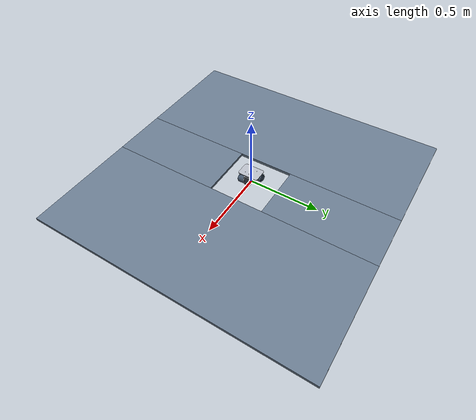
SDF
<?xml version='1.0' encoding='utf-8'?>
<sdf version="1.7">
  <world name="hole">
    <gravity>0 0 -9.81</gravity>
    <physics name="dart" type="ignored">
      <max_step_size>0.001</max_step_size>
      <real_time_factor>1</real_time_factor>
    </physics>
    <plugin filename="ignition-gazebo-physics-system" name="ignition::gazebo::systems::Physics">
      <engine>ignition-physics-dartsim-plugin</engine>
    </plugin>
    <plugin filename="ignition-gazebo-contact-system" name="ignition::gazebo::systems::Contact" />
    <plugin filename="ignition-gazebo-user-commands-system" name="ignition::gazebo::systems::UserCommands" />
    <plugin filename="ignition-gazebo-scene-broadcaster-system" name="ignition::gazebo::systems::SceneBroadcaster" />
    <scene>
      <ambient>0.65 0.65 0.65 1</ambient>
      <background>0.15 0.18 0.22 1</background>
    </scene>
    <light name="sun" type="directional">
      <pose>0 0 10 0 0 0</pose>
      <diffuse>0.9 0.9 0.9 1</diffuse>
      <direction>-0.5 -0.4 -1</direction>
    </light>
    <gui fullscreen="false">
      <plugin filename="MinimalScene" name="3D View">
        <ignition-gui>
          <title>3D View</title>
          <property type="bool" key="showTitleBar">false</property>
          <property type="string" key="state">docked</property>
        </ignition-gui>
        <engine>ogre2</engine>
        <scene>scene</scene>
        <ambient_light>0.65 0.65 0.65</ambient_light>
        <background_color>0.15 0.18 0.22</background_color>
        <camera_pose>0.25 -0.3 0.23 0 0.43 2.2655346</camera_pose>
        <camera_clip>
          <near>0.005</near>
          <far>100</far>
        </camera_clip>
      </plugin>
      <plugin filename="GzSceneManager" name="Scene Manager">
        <ignition-gui>
          <property type="bool" key="showTitleBar">false</property>
          <property type="string" key="state">floating</property>
          <property type="bool" key="resizable">false</property>
          <property type="double" key="width">5</property>
          <property type="double" key="height">5</property>
        </ignition-gui>
      </plugin>
      <plugin filename="InteractiveViewControl" name="View Control">
        <ignition-gui>
          <property type="bool" key="showTitleBar">false</property>
          <property type="string" key="state">floating</property>
          <property type="bool" key="resizable">false</property>
          <property type="double" key="width">5</property>
          <property type="double" key="height">5</property>
        </ignition-gui>
      </plugin>
      <plugin filename="CameraTracking" name="Camera Tracking">
        <ignition-gui>
          <property type="bool" key="showTitleBar">false</property>
          <property type="string" key="state">floating</property>
          <property type="bool" key="resizable">false</property>
          <property type="double" key="width">5</property>
          <property type="double" key="height">5</property>
        </ignition-gui>
      </plugin>
      <plugin filename="EntityContextMenuPlugin" name="Context Menu">
        <ignition-gui>
          <property type="bool" key="showTitleBar">false</property>
          <property type="string" key="state">floating</property>
          <property type="bool" key="resizable">false</property>
          <property type="double" key="width">5</property>
          <property type="double" key="height">5</property>
        </ignition-gui>
      </plugin>
      <plugin filename="WorldControl" name="World Control">
        <ignition-gui>
          <property type="bool" key="showTitleBar">false</property>
          <property type="string" key="state">floating</property>
          <property type="bool" key="resizable">false</property>
          <property type="double" key="width">120</property>
          <property type="double" key="height">70</property>
          <property type="double" key="z">1</property>
          <anchors target="3D View">
            <line own="left" target="left" />
            <line own="bottom" target="bottom" />
          </anchors>
        </ignition-gui>
        <play_pause>true</play_pause>
        <step>true</step>
        <start_paused>false</start_paused>
        <use_event>true</use_event>
      </plugin>
      <plugin filename="WorldStats" name="World Stats">
        <ignition-gui>
          <property type="bool" key="showTitleBar">false</property>
          <property type="string" key="state">floating</property>
          <property type="bool" key="resizable">false</property>
          <property type="double" key="width">260</property>
          <property type="double" key="height">110</property>
          <property type="double" key="z">1</property>
          <anchors target="3D View">
            <line own="right" target="right" />
            <line own="bottom" target="bottom" />
          </anchors>
        </ignition-gui>
        <sim_time>true</sim_time>
        <real_time>true</real_time>
        <real_time_factor>true</real_time_factor>
        <iterations>true</iterations>
      </plugin>
      <plugin filename="EntityTree" name="Entity Tree">
        <ignition-gui>
          <property type="bool" key="showTitleBar">false</property>
        </ignition-gui>
      </plugin>
    </gui>
    <model name="steel_plate">
      <static>true</static>
      <pose>0 0 0 0 0 0</pose>
      <link name="plate">
        <visual name="visual_0">
          <pose>-0.6 0 -0.01 0 0 0</pose>
          <geometry>
            <box>
              <size>0.8 2 0.02</size>
            </box>
          </geometry>
          <material>
            <ambient>0.4 0.47 0.55 1</ambient>
            <diffuse>0.4 0.47 0.55 1</diffuse>
            <specular>0.15 0.15 0.15 1</specular>
          </material>
        </visual>
        <collision name="collision_0">
          <pose>-0.6 0 -0.01 0 0 0</pose>
          <geometry>
            <box>
              <size>0.8 2 0.02</size>
            </box>
          </geometry>
          <surface>
            <friction>
              <ode>
                <mu>0.8</mu>
                <mu2>0.8</mu2>
              </ode>
            </friction>
          </surface>
        </collision>
        <visual name="visual_1">
          <pose>0.6 0 -0.01 0 0 0</pose>
          <geometry>
            <box>
              <size>0.8 2 0.02</size>
            </box>
          </geometry>
          <material>
            <ambient>0.4 0.47 0.55 1</ambient>
            <diffuse>0.4 0.47 0.55 1</diffuse>
            <specular>0.15 0.15 0.15 1</specular>
          </material>
        </visual>
        <collision name="collision_1">
          <pose>0.6 0 -0.01 0 0 0</pose>
          <geometry>
            <box>
              <size>0.8 2 0.02</size>
            </box>
          </geometry>
          <surface>
            <friction>
              <ode>
                <mu>0.8</mu>
                <mu2>0.8</mu2>
              </ode>
            </friction>
          </surface>
        </collision>
        <visual name="visual_2">
          <pose>0 -0.6 -0.01 0 0 0</pose>
          <geometry>
            <box>
              <size>0.4 0.8 0.02</size>
            </box>
          </geometry>
          <material>
            <ambient>0.4 0.47 0.55 1</ambient>
            <diffuse>0.4 0.47 0.55 1</diffuse>
            <specular>0.15 0.15 0.15 1</specular>
          </material>
        </visual>
        <collision name="collision_2">
          <pose>0 -0.6 -0.01 0 0 0</pose>
          <geometry>
            <box>
              <size>0.4 0.8 0.02</size>
            </box>
          </geometry>
          <surface>
            <friction>
              <ode>
                <mu>0.8</mu>
                <mu2>0.8</mu2>
              </ode>
            </friction>
          </surface>
        </collision>
        <visual name="visual_3">
          <pose>0 0.6 -0.01 0 0 0</pose>
          <geometry>
            <box>
              <size>0.4 0.8 0.02</size>
            </box>
          </geometry>
          <material>
            <ambient>0.4 0.47 0.55 1</ambient>
            <diffuse>0.4 0.47 0.55 1</diffuse>
            <specular>0.15 0.15 0.15 1</specular>
          </material>
        </visual>
        <collision name="collision_3">
          <pose>0 0.6 -0.01 0 0 0</pose>
          <geometry>
            <box>
              <size>0.4 0.8 0.02</size>
            </box>
          </geometry>
          <surface>
            <friction>
              <ode>
                <mu>0.8</mu>
                <mu2>0.8</mu2>
              </ode>
            </friction>
          </surface>
        </collision>
      </link>
    </model>
    <model name="magnetic_robot">
      <static>false</static>
      <self_collide>true</self_collide>
      <link name="base_link">
        <pose>0 0 0 0 0 0</pose>
        <self_collide>true</self_collide>
        <inertial>
          <pose>-0.01669640313236539 0.02143332896454504 0.02952235075090278 0 0 0</pose>
          <mass>0.7962190308204766</mass>
          <inertia>
            <ixx>0.001831987699753752</ixx>
            <iyy>0.001285332298115545</iyy>
            <izz>0.001880155508218689</izz>
            <ixy>0.00030023215367392</ixy>
            <ixz>-0.000347314379692567</ixz>
            <iyz>0.000466609169345381</iyz>
          </inertia>
        </inertial>
        <visual name="robot_chassis_visual">
          <geometry>
            <mesh>
              <uri>model://magnetic_robot/meshes/robot_chassis.stl</uri>
            </mesh>
          </geometry>
          <material>
            <ambient>0.7 0.72 0.76 1</ambient>
            <diffuse>0.7 0.72 0.76 1</diffuse>
            <specular>0.15 0.15 0.15 1</specular>
          </material>
        </visual>
        <collision name="robot_chassis_collision_0">
          <geometry>
            <mesh>
              <uri>model://magnetic_robot/meshes/robot_chassis_collision_0.stl</uri>
            </mesh>
          </geometry>
          <surface>
            <friction>
              <ode>
                <mu>0.8</mu>
                <mu2>0.8</mu2>
              </ode>
            </friction>
          </surface>
        </collision>
        <collision name="robot_chassis_collision_1">
          <geometry>
            <mesh>
              <uri>model://magnetic_robot/meshes/robot_chassis_collision_1.stl</uri>
            </mesh>
          </geometry>
          <surface>
            <friction>
              <ode>
                <mu>0.8</mu>
                <mu2>0.8</mu2>
              </ode>
            </friction>
          </surface>
        </collision>
        <visual name="rear_motor_visual">
          <geometry>
            <mesh>
              <uri>model://magnetic_robot/meshes/rear_motor.stl</uri>
            </mesh>
          </geometry>
          <material>
            <ambient>0.25 0.32 0.4 1</ambient>
            <diffuse>0.25 0.32 0.4 1</diffuse>
            <specular>0.15 0.15 0.15 1</specular>
          </material>
        </visual>
        <collision name="rear_motor_collision_0">
          <geometry>
            <mesh>
              <uri>model://magnetic_robot/meshes/rear_motor_collision_0.stl</uri>
            </mesh>
          </geometry>
          <surface>
            <friction>
              <ode>
                <mu>0.8</mu>
                <mu2>0.8</mu2>
              </ode>
            </friction>
          </surface>
        </collision>
      </link>
      <link name="front_steering_link">
        <pose>0.026000008737 0 0.046999994064 0 0 0</pose>
        <self_collide>true</self_collide>
        <inertial>
          <pose>0.00592058993996759 -0.03297798702958531 -0.03390483603737569 0 0 0</pose>
          <mass>0.5037809691795236</mass>
          <inertia>
            <ixx>0.0005671879949864165</ixx>
            <iyy>0.0003699582437427575</iyy>
            <izz>0.0004211826425839693</izz>
            <ixy>4.263925063058334e-05</ixy>
            <ixz>4.064454209028947e-05</ixz>
            <iyz>-0.0001971887272466101</iyz>
          </inertia>
        </inertial>
        <visual name="front_steering_visual">
          <geometry>
            <mesh>
              <uri>model://magnetic_robot/meshes/front_steering.stl</uri>
            </mesh>
          </geometry>
          <material>
            <ambient>0.7 0.72 0.76 1</ambient>
            <diffuse>0.7 0.72 0.76 1</diffuse>
            <specular>0.15 0.15 0.15 1</specular>
          </material>
        </visual>
        <collision name="front_steering_collision_0">
          <geometry>
            <mesh>
              <uri>model://magnetic_robot/meshes/front_steering_collision_0.stl</uri>
            </mesh>
          </geometry>
          <surface>
            <friction>
              <ode>
                <mu>0.8</mu>
                <mu2>0.8</mu2>
              </ode>
            </friction>
          </surface>
        </collision>
        <collision name="front_steering_collision_1">
          <geometry>
            <mesh>
              <uri>model://magnetic_robot/meshes/front_steering_collision_1.stl</uri>
            </mesh>
          </geometry>
          <surface>
            <friction>
              <ode>
                <mu>0.8</mu>
                <mu2>0.8</mu2>
              </ode>
            </friction>
          </surface>
        </collision>
        <collision name="front_steering_collision_2">
          <geometry>
            <mesh>
              <uri>model://magnetic_robot/meshes/front_steering_collision_2.stl</uri>
            </mesh>
          </geometry>
          <surface>
            <friction>
              <ode>
                <mu>0.8</mu>
                <mu2>0.8</mu2>
              </ode>
            </friction>
          </surface>
        </collision>
        <visual name="front_motor_visual">
          <geometry>
            <mesh>
              <uri>model://magnetic_robot/meshes/front_motor.stl</uri>
            </mesh>
          </geometry>
          <material>
            <ambient>0.25 0.32 0.4 1</ambient>
            <diffuse>0.25 0.32 0.4 1</diffuse>
            <specular>0.15 0.15 0.15 1</specular>
          </material>
        </visual>
        <collision name="front_motor_collision_0">
          <geometry>
            <mesh>
              <uri>model://magnetic_robot/meshes/front_motor_collision_0.stl</uri>
            </mesh>
          </geometry>
          <surface>
            <friction>
              <ode>
                <mu>0.8</mu>
                <mu2>0.8</mu2>
              </ode>
            </friction>
          </surface>
        </collision>
      </link>
      <link name="front_wheel_link">
        <pose>0.03499999999995763 1.617955838299767e-06 -5.996107468181355e-09 0 0 0</pose>
        <self_collide>true</self_collide>
        <inertial>
          <pose>1.564440664862665e-05 4.041569127597572e-06 -4.522740683739132e-05 0 0 0</pose>
          <mass>0.7</mass>
          <inertia>
            <ixx>0.0002511333880876556</ixx>
            <iyy>0.0003773690251926861</iyy>
            <izz>0.0002514085933266564</izz>
            <ixy>4.425863834136158e-11</ixy>
            <ixz>-1.081309487650233e-07</ixz>
            <iyz>-1.279616102240571e-10</iyz>
          </inertia>
        </inertial>
        <visual name="front_wheel_visual">
          <geometry>
            <mesh>
              <uri>model://magnetic_robot/meshes/front_wheel.stl</uri>
            </mesh>
          </geometry>
          <material>
            <ambient>0.12 0.14 0.16 1</ambient>
            <diffuse>0.12 0.14 0.16 1</diffuse>
            <specular>0.15 0.15 0.15 1</specular>
          </material>
        </visual>
        <collision name="front_wheel_band_0">
          <pose>0 -0.009500000000000001 0 1.570796326794897 0 0</pose>
          <geometry>
            <cylinder>
              <radius>0.0315</radius>
              <length>0.0135</length>
            </cylinder>
          </geometry>
          <surface>
            <friction>
              <ode>
                <mu>0.8</mu>
                <mu2>0.8</mu2>
              </ode>
            </friction>
          </surface>
        </collision>
        <sensor name="front_wheel_contact_0" type="contact">
          <always_on>true</always_on>
          <update_rate>0</update_rate>
          <contact>
            <collision>front_wheel_band_0</collision>
          </contact>
        </sensor>
        <collision name="front_wheel_band_1">
          <pose>0 -0.0002500000000000002 0 1.570796326794897 0 0</pose>
          <geometry>
            <cylinder>
              <radius>0.03</radius>
              <length>0.004999999999999999</length>
            </cylinder>
          </geometry>
          <surface>
            <friction>
              <ode>
                <mu>0.8</mu>
                <mu2>0.8</mu2>
              </ode>
            </friction>
          </surface>
        </collision>
        <sensor name="front_wheel_contact_1" type="contact">
          <always_on>true</always_on>
          <update_rate>0</update_rate>
          <contact>
            <collision>front_wheel_band_1</collision>
          </contact>
        </sensor>
        <collision name="front_wheel_band_2">
          <pose>0 0.009250000000000001 0 1.570796326794897 0 0</pose>
          <geometry>
            <cylinder>
              <radius>0.0315</radius>
              <length>0.014000000000000002</length>
            </cylinder>
          </geometry>
          <surface>
            <friction>
              <ode>
                <mu>0.8</mu>
                <mu2>0.8</mu2>
              </ode>
            </friction>
          </surface>
        </collision>
        <sensor name="front_wheel_contact_2" type="contact">
          <always_on>true</always_on>
          <update_rate>0</update_rate>
          <contact>
            <collision>front_wheel_band_2</collision>
          </contact>
        </sensor>
      </link>
      <link name="rear_wheel_link">
        <pose>-0.0350000000000369 -1.617956804502579e-06 5.99548568083752e-09 0 0 0</pose>
        <self_collide>true</self_collide>
        <inertial>
          <pose>-1.56444271777606e-05 -4.04142573180163e-06 -4.52275795241891e-05 0 0 0</pose>
          <mass>0.7</mass>
          <inertia>
            <ixx>0.0002511333886283832</ixx>
            <iyy>0.000377369027113465</iyy>
            <izz>0.0002514085950839763</izz>
            <ixy>4.42564751284985e-11</ixy>
            <ixz>1.08132728313764e-07</ixz>
            <iyz>1.279616482848986e-10</iyz>
          </inertia>
        </inertial>
        <visual name="rear_wheel_visual">
          <geometry>
            <mesh>
              <uri>model://magnetic_robot/meshes/rear_wheel.stl</uri>
            </mesh>
          </geometry>
          <material>
            <ambient>0.12 0.14 0.16 1</ambient>
            <diffuse>0.12 0.14 0.16 1</diffuse>
            <specular>0.15 0.15 0.15 1</specular>
          </material>
        </visual>
        <collision name="rear_wheel_band_0">
          <pose>0 0.009500000000000001 0 1.570796326794897 0 0</pose>
          <geometry>
            <cylinder>
              <radius>0.0315</radius>
              <length>0.0135</length>
            </cylinder>
          </geometry>
          <surface>
            <friction>
              <ode>
                <mu>0.8</mu>
                <mu2>0.8</mu2>
              </ode>
            </friction>
          </surface>
        </collision>
        <sensor name="rear_wheel_contact_0" type="contact">
          <always_on>true</always_on>
          <update_rate>0</update_rate>
          <contact>
            <collision>rear_wheel_band_0</collision>
          </contact>
        </sensor>
        <collision name="rear_wheel_band_1">
          <pose>0 0.0002500000000000002 0 1.570796326794897 0 0</pose>
          <geometry>
            <cylinder>
              <radius>0.03</radius>
              <length>0.004999999999999999</length>
            </cylinder>
          </geometry>
          <surface>
            <friction>
              <ode>
                <mu>0.8</mu>
                <mu2>0.8</mu2>
              </ode>
            </friction>
          </surface>
        </collision>
        <sensor name="rear_wheel_contact_1" type="contact">
          <always_on>true</always_on>
          <update_rate>0</update_rate>
          <contact>
            <collision>rear_wheel_band_1</collision>
          </contact>
        </sensor>
        <collision name="rear_wheel_band_2">
          <pose>0 -0.009250000000000001 0 1.570796326794897 0 0</pose>
          <geometry>
            <cylinder>
              <radius>0.0315</radius>
              <length>0.014000000000000002</length>
            </cylinder>
          </geometry>
          <surface>
            <friction>
              <ode>
                <mu>0.8</mu>
                <mu2>0.8</mu2>
              </ode>
            </friction>
          </surface>
        </collision>
        <sensor name="rear_wheel_contact_2" type="contact">
          <always_on>true</always_on>
          <update_rate>0</update_rate>
          <contact>
            <collision>rear_wheel_band_2</collision>
          </contact>
        </sensor>
      </link>
      <joint name="front_steering_joint" type="revolute">
        <parent>base_link</parent>
        <child>front_steering_link</child>
        <axis>
          <xyz>0 0 1</xyz>
          <dynamics>
            <damping>0.02</damping>
          </dynamics>
          <limit>
            <lower>-0.26005405854715513</lower>
            <upper>0.26005405854715513</upper>
          </limit>
        </axis>
      </joint>
      <joint name="front_wheel_joint" type="revolute">
        <parent>front_steering_link</parent>
        <child>front_wheel_link</child>
        <axis>
          <xyz>0 1 0</xyz>
          <dynamics>
            <damping>0.0001</damping>
          </dynamics>
        </axis>
      </joint>
      <joint name="rear_wheel_joint" type="revolute">
        <parent>base_link</parent>
        <child>rear_wheel_link</child>
        <axis>
          <xyz>0 1 0</xyz>
          <dynamics>
            <damping>0.0001</damping>
          </dynamics>
        </axis>
      </joint>
      <plugin filename="libMagneticRobot.so" name="magnetic_robot::MagneticAdhesion">
        <force_per_wheel>200.0</force_per_wheel>
        <capture_gap>0.0005</capture_gap>
        <release_gap>0.001</release_gap>
        <default_surface_model>bridge</default_surface_model>
        <default_surface_file>surfaces/bridge.stl</default_surface_file>
        <surface>
          <model>steel_plate</model>
          <file>surfaces/hole.stl</file>
        </surface>
      </plugin>
      <plugin filename="libMagneticRobot.so" name="magnetic_robot::SteeringLimitMonitor">
        <hard_limit>0.2617993877991494</hard_limit>
      </plugin>
      <pose>0 0 0.0316 0 0 0</pose>
    </model>
  </world>
</sdf>
